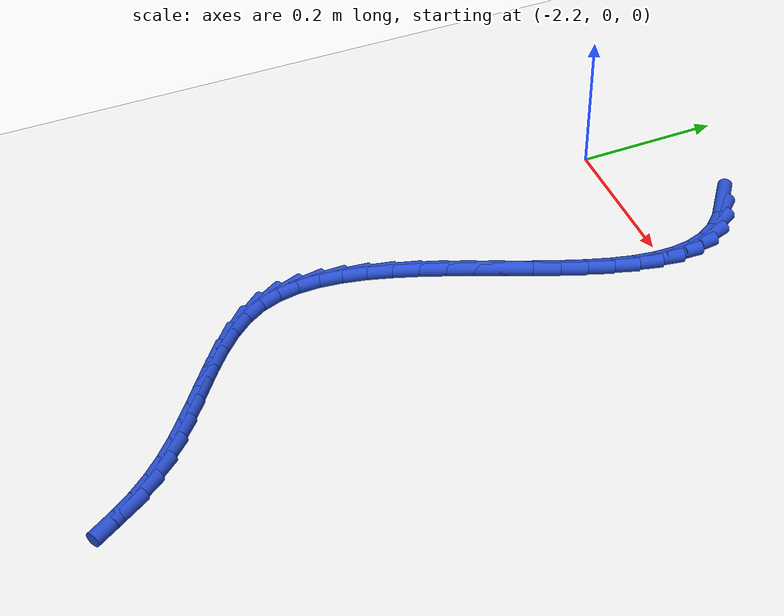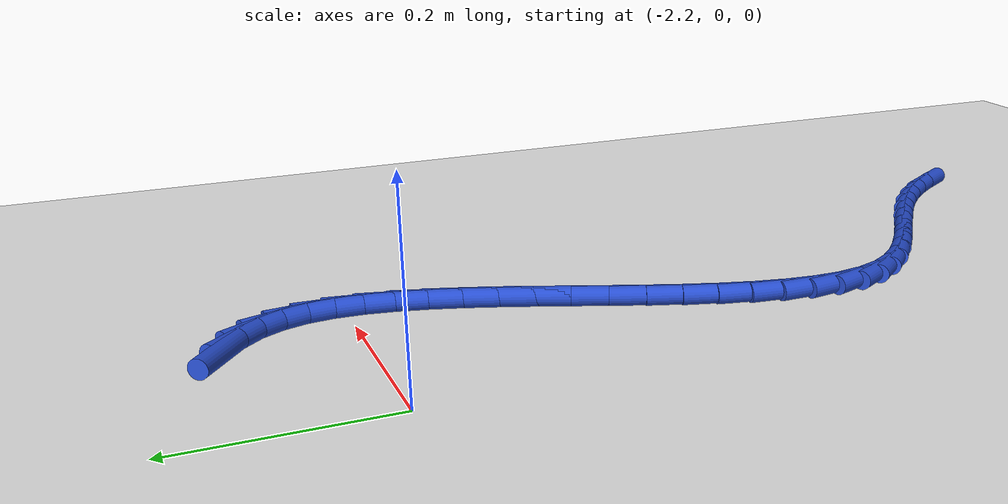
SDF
<sdf version="1.6">
 <world name="default">
  <model name="ground_plane">
   <static>1</static>
   <link name="link">
    <collision name="collision">
     <geometry><plane><normal>0 0 1</normal><size>100 100</size></plane></geometry>
     <surface><friction><ode><mu>100</mu><mu2>50</mu2></ode></friction></surface>
    </collision>
    <visual name="visual">
     <cast_shadows>0</cast_shadows>
     <geometry><plane><normal>0 0 1</normal><size>100 100</size></plane></geometry>
     <material>
      <script><uri>file://media/materials/scripts/gazebo.material</uri><name>Gazebo/WhiteGlow</name></script>
     </material>
    </visual>
   </link>
  </model>
  <model name="line">
   <link name="link_147">
    <pose>-2.033990776232663 0.12459184326906561 0.01 0 1.57 -0.6410639100689401</pose>
    <collision name="collision">
     <geometry><cylinder><radius>0.01</radius><length>0.08</length></cylinder></geometry>
    </collision>
    <visual name="visual">
     <material>
      <script><name>Gazebo/Blue</name><uri>file://media/materials/scripts/gazebo.material</uri></script>
     </material>
     <geometry><cylinder><radius>0.01</radius><length>0.08</length></cylinder></geometry>
    </visual>
   </link>
   <link name="link_148">
    <pose>-2.0100074000769603 0.10669547633855624 0.01 0 1.57 -0.8314911376877588</pose>
    <collision name="collision">
     <geometry><cylinder><radius>0.01</radius><length>0.08</length></cylinder></geometry>
    </collision>
    <visual name="visual">
     <material>
      <script><name>Gazebo/Blue</name><uri>file://media/materials/scripts/gazebo.material</uri></script>
     </material>
     <geometry><cylinder><radius>0.01</radius><length>0.08</length></cylinder></geometry>
    </visual>
   </link>
   <link name="link_149">
    <pose>-1.9916091952062818 0.08651794056798692 0.01 0 1.57 -1.0586668584838619</pose>
    <collision name="collision">
     <geometry><cylinder><radius>0.01</radius><length>0.08</length></cylinder></geometry>
    </collision>
    <visual name="visual">
     <material>
      <script><name>Gazebo/Blue</name><uri>file://media/materials/scripts/gazebo.material</uri></script>
     </material>
     <geometry><cylinder><radius>0.01</radius><length>0.08</length></cylinder></geometry>
    </visual>
   </link>
   <link name="link_150">
    <pose>-1.9789691260480256 0.06403302748500532 0.01 0 1.57 -1.2772578662597003</pose>
    <collision name="collision">
     <geometry><cylinder><radius>0.01</radius><length>0.08</length></cylinder></geometry>
    </collision>
    <visual name="visual">
     <material>
      <script><name>Gazebo/Blue</name><uri>file://media/materials/scripts/gazebo.material</uri></script>
     </material>
     <geometry><cylinder><radius>0.01</radius><length>0.08</length></cylinder></geometry>
    </visual>
   </link>
   <link name="link_151">
    <pose>-1.9715380231471555 0.03944874140511876 0.01 0 1.57 -1.466139635362103</pose>
    <collision name="collision">
     <geometry><cylinder><radius>0.01</radius><length>0.08</length></cylinder></geometry>
    </collision>
    <visual name="visual">
     <material>
      <script><name>Gazebo/Blue</name><uri>file://media/materials/scripts/gazebo.material</uri></script>
     </material>
     <geometry><cylinder><radius>0.01</radius><length>0.08</length></cylinder></geometry>
    </visual>
   </link>
   <link name="link_152">
    <pose>-1.9687573276656614 0.01297613194279617 0.01 0 1.57 1.524252397911639</pose>
    <collision name="collision">
     <geometry><cylinder><radius>0.01</radius><length>0.08</length></cylinder></geometry>
    </collision>
    <visual name="visual">
     <material>
      <script><name>Gazebo/Blue</name><uri>file://media/materials/scripts/gazebo.material</uri></script>
     </material>
     <geometry><cylinder><radius>0.01</radius><length>0.08</length></cylinder></geometry>
    </visual>
   </link>
   <link name="link_153">
    <pose>-1.9700684807655338 -0.015173751287493459 0.01 0 1.57 1.4086576493405094</pose>
    <collision name="collision">
     <geometry><cylinder><radius>0.01</radius><length>0.08</length></cylinder></geometry>
    </collision>
    <visual name="visual">
     <material>
      <script><name>Gazebo/Blue</name><uri>file://media/materials/scripts/gazebo.material</uri></script>
     </material>
     <geometry><cylinder><radius>0.01</radius><length>0.08</length></cylinder></geometry>
    </visual>
   </link>
   <link name="link_154">
    <pose>-1.9749129236087632 -0.044789858671281074 0.01 0 1.57 1.3227300893939</pose>
    <collision name="collision">
     <geometry><cylinder><radius>0.01</radius><length>0.08</length></cylinder></geometry>
    </collision>
    <visual name="visual">
     <material>
      <script><name>Gazebo/Blue</name><uri>file://media/materials/scripts/gazebo.material</uri></script>
     </material>
     <geometry><cylinder><radius>0.01</radius><length>0.08</length></cylinder></geometry>
    </visual>
   </link>
   <link name="link_155">
    <pose>-1.9827320973573408 -0.0756611405940987 0.01 0 1.57 1.2604564068421333</pose>
    <collision name="collision">
     <geometry><cylinder><radius>0.01</radius><length>0.08</length></cylinder></geometry>
    </collision>
    <visual name="visual">
     <material>
      <script><name>Gazebo/Blue</name><uri>file://media/materials/scripts/gazebo.material</uri></script>
     </material>
     <geometry><cylinder><radius>0.01</radius><length>0.08</length></cylinder></geometry>
    </visual>
   </link>
   <link name="link_156">
    <pose>-1.992967443173257 -0.10757654744147538 0.01 0 1.57 1.217060617674295</pose>
    <collision name="collision">
     <geometry><cylinder><radius>0.01</radius><length>0.08</length></cylinder></geometry>
    </collision>
    <visual name="visual">
     <material>
      <script><name>Gazebo/Blue</name><uri>file://media/materials/scripts/gazebo.material</uri></script>
     </material>
     <geometry><cylinder><radius>0.01</radius><length>0.08</length></cylinder></geometry>
    </visual>
   </link>
   <link name="link_157">
    <pose>-2.0050604022185023 -0.14032502959894316 0.01 0 1.57 1.1891586995908447</pose>
    <collision name="collision">
     <geometry><cylinder><radius>0.01</radius><length>0.08</length></cylinder></geometry>
    </collision>
    <visual name="visual">
     <material>
      <script><name>Gazebo/Blue</name><uri>file://media/materials/scripts/gazebo.material</uri></script>
     </material>
     <geometry><cylinder><radius>0.01</radius><length>0.08</length></cylinder></geometry>
    </visual>
   </link>
   <link name="link_158">
    <pose>-2.0184524156550663 -0.17369553745203287 0.01 0 1.57 1.1745711107287942</pose>
    <collision name="collision">
     <geometry><cylinder><radius>0.01</radius><length>0.08</length></cylinder></geometry>
    </collision>
    <visual name="visual">
     <material>
      <script><name>Gazebo/Blue</name><uri>file://media/materials/scripts/gazebo.material</uri></script>
     </material>
     <geometry><cylinder><radius>0.01</radius><length>0.08</length></cylinder></geometry>
    </visual>
   </link>
   <link name="link_159">
    <pose>-2.0325849246449406 -0.2074770213862756 0.01 0 1.57 1.1721118299722944</pose>
    <collision name="collision">
     <geometry><cylinder><radius>0.01</radius><length>0.08</length></cylinder></geometry>
    </collision>
    <visual name="visual">
     <material>
      <script><name>Gazebo/Blue</name><uri>file://media/materials/scripts/gazebo.material</uri></script>
     </material>
     <geometry><cylinder><radius>0.01</radius><length>0.08</length></cylinder></geometry>
    </visual>
   </link>
   <link name="link_160">
    <pose>-2.0468993703501166 -0.2414584317872024 0.01 0 1.57 1.1814469636954539</pose>
    <collision name="collision">
     <geometry><cylinder><radius>0.01</radius><length>0.08</length></cylinder></geometry>
    </collision>
    <visual name="visual">
     <material>
      <script><name>Gazebo/Blue</name><uri>file://media/materials/scripts/gazebo.material</uri></script>
     </material>
     <geometry><cylinder><radius>0.01</radius><length>0.08</length></cylinder></geometry>
    </visual>
   </link>
   <link name="link_161">
    <pose>-2.0608371939325827 -0.2754287190403442 0.01 0 1.57 1.2030392906257317</pose>
    <collision name="collision">
     <geometry><cylinder><radius>0.01</radius><length>0.08</length></cylinder></geometry>
    </collision>
    <visual name="visual">
     <material>
      <script><name>Gazebo/Blue</name><uri>file://media/materials/scripts/gazebo.material</uri></script>
     </material>
     <geometry><cylinder><radius>0.01</radius><length>0.08</length></cylinder></geometry>
    </visual>
   </link>
   <link name="link_162">
    <pose>-2.0738398365543302 -0.30917683353123204 0.01 0 1.57 1.2381733660178766</pose>
    <collision name="collision">
     <geometry><cylinder><radius>0.01</radius><length>0.08</length></cylinder></geometry>
    </collision>
    <visual name="visual">
     <material>
      <script><name>Gazebo/Blue</name><uri>file://media/materials/scripts/gazebo.material</uri></script>
     </material>
     <geometry><cylinder><radius>0.01</radius><length>0.08</length></cylinder></geometry>
    </visual>
   </link>
   <link name="link_163">
    <pose>-2.085348739377352 -0.342491725645397 0.01 0 1.57 1.289043680743816</pose>
    <collision name="collision">
     <geometry><cylinder><radius>0.01</radius><length>0.08</length></cylinder></geometry>
    </collision>
    <visual name="visual">
     <material>
      <script><name>Gazebo/Blue</name><uri>file://media/materials/scripts/gazebo.material</uri></script>
     </material>
     <geometry><cylinder><radius>0.01</radius><length>0.08</length></cylinder></geometry>
    </visual>
   </link>
   <link name="link_164">
    <pose>-2.0948053435636353 -0.37516234576837104 0.01 0 1.57 1.358856213631423</pose>
    <collision name="collision">
     <geometry><cylinder><radius>0.01</radius><length>0.08</length></cylinder></geometry>
    </collision>
    <visual name="visual">
     <material>
      <script><name>Gazebo/Blue</name><uri>file://media/materials/scripts/gazebo.material</uri></script>
     </material>
     <geometry><cylinder><radius>0.01</radius><length>0.08</length></cylinder></geometry>
    </visual>
   </link>
   <link name="link_165">
    <pose>-2.1016510902751726 -0.40697764428568295 0.01 0 1.57 1.4518015411511787</pose>
    <collision name="collision">
     <geometry><cylinder><radius>0.01</radius><length>0.08</length></cylinder></geometry>
    </collision>
    <visual name="visual">
     <material>
      <script><name>Gazebo/Blue</name><uri>file://media/materials/scripts/gazebo.material</uri></script>
     </material>
     <geometry><cylinder><radius>0.01</radius><length>0.08</length></cylinder></geometry>
    </visual>
   </link>
   <link name="link_166">
    <pose>-2.105327420673953 -0.4377265715828649 0.01 0 1.57 -1.5690439664536842</pose>
    <collision name="collision">
     <geometry><cylinder><radius>0.01</radius><length>0.08</length></cylinder></geometry>
    </collision>
    <visual name="visual">
     <material>
      <script><name>Gazebo/Blue</name><uri>file://media/materials/scripts/gazebo.material</uri></script>
     </material>
     <geometry><cylinder><radius>0.01</radius><length>0.08</length></cylinder></geometry>
    </visual>
   </link>
   <link name="link_167">
    <pose>-2.105275775921969 -0.46719807804544805 0.01 0 1.57 -1.4169918240626291</pose>
    <collision name="collision">
     <geometry><cylinder><radius>0.01</radius><length>0.08</length></cylinder></geometry>
    </collision>
    <visual name="visual">
     <material>
      <script><name>Gazebo/Blue</name><uri>file://media/materials/scripts/gazebo.material</uri></script>
     </material>
     <geometry><cylinder><radius>0.01</radius><length>0.08</length></cylinder></geometry>
    </visual>
   </link>
   <link name="link_168">
    <pose>-2.1009375971812094 -0.49518111405896303 0.01 0 1.57 -1.234662533809981</pose>
    <collision name="collision">
     <geometry><cylinder><radius>0.01</radius><length>0.08</length></cylinder></geometry>
    </collision>
    <visual name="visual">
     <material>
      <script><name>Gazebo/Blue</name><uri>file://media/materials/scripts/gazebo.material</uri></script>
     </material>
     <geometry><cylinder><radius>0.01</radius><length>0.08</length></cylinder></geometry>
    </visual>
   </link>
   <link name="link_169">
    <pose>-2.091754325613666 -0.5214646300089412 0.01 0 1.57 -1.035009906181265</pose>
    <collision name="collision">
     <geometry><cylinder><radius>0.01</radius><length>0.08</length></cylinder></geometry>
    </collision>
    <visual name="visual">
     <material>
      <script><name>Gazebo/Blue</name><uri>file://media/materials/scripts/gazebo.material</uri></script>
     </material>
     <geometry><cylinder><radius>0.01</radius><length>0.08</length></cylinder></geometry>
    </visual>
   </link>
   <link name="link_170">
    <pose>-2.077268222412108 -0.5458636568346108 0.01 0 1.57 -0.8680925553389992</pose>
    <collision name="collision">
     <geometry><cylinder><radius>0.01</radius><length>0.08</length></cylinder></geometry>
    </collision>
    <visual name="visual">
     <material>
      <script><name>Gazebo/Blue</name><uri>file://media/materials/scripts/gazebo.material</uri></script>
     </material>
     <geometry><cylinder><radius>0.01</radius><length>0.08</length></cylinder></geometry>
    </visual>
   </link>
   <link name="link_171">
    <pose>-2.058116874445013 -0.5684765689723265 0.01 0 1.57 -0.7531164788720646</pose>
    <collision name="collision">
     <geometry><cylinder><radius>0.01</radius><length>0.08</length></cylinder></geometry>
    </collision>
    <visual name="visual">
     <material>
      <script><name>Gazebo/Blue</name><uri>file://media/materials/scripts/gazebo.material</uri></script>
     </material>
     <geometry><cylinder><radius>0.01</radius><length>0.08</length></cylinder></geometry>
    </visual>
   </link>
   <link name="link_172">
    <pose>-2.0356097336576515 -0.589575541769604 0.01 0 1.57 -0.6802991213408406</pose>
    <collision name="collision">
     <geometry><cylinder><radius>0.01</radius><length>0.08</length></cylinder></geometry>
    </collision>
    <visual name="visual">
     <material>
      <script><name>Gazebo/Blue</name><uri>file://media/materials/scripts/gazebo.material</uri></script>
     </material>
     <geometry><cylinder><radius>0.01</radius><length>0.08</length></cylinder></geometry>
    </visual>
   </link>
   <link name="link_173">
    <pose>-2.0110659853257196 -0.6094352684332068 0.01 0 1.57 -0.6420659647392101</pose>
    <collision name="collision">
     <geometry><cylinder><radius>0.01</radius><length>0.08</length></cylinder></geometry>
    </collision>
    <visual name="visual">
     <material>
      <script><name>Gazebo/Blue</name><uri>file://media/materials/scripts/gazebo.material</uri></script>
     </material>
     <geometry><cylinder><radius>0.01</radius><length>0.08</length></cylinder></geometry>
    </visual>
   </link>
   <link name="link_174">
    <pose>-1.9857933262412142 -0.6283331519124717 0.01 0 1.57 -0.630172774256955</pose>
    <collision name="collision">
     <geometry><cylinder><radius>0.01</radius><length>0.08</length></cylinder></geometry>
    </collision>
    <visual name="visual">
     <material>
      <script><name>Gazebo/Blue</name><uri>file://media/materials/scripts/gazebo.material</uri></script>
     </material>
     <geometry><cylinder><radius>0.01</radius><length>0.08</length></cylinder></geometry>
    </visual>
   </link>
   <link name="link_175">
    <pose>-1.9606896541723149 -0.6466432528090058 0.01 0 1.57 -0.6384127927438503</pose>
    <collision name="collision">
     <geometry><cylinder><radius>0.01</radius><length>0.08</length></cylinder></geometry>
    </collision>
    <visual name="visual">
     <material>
      <script><name>Gazebo/Blue</name><uri>file://media/materials/scripts/gazebo.material</uri></script>
     </material>
     <geometry><cylinder><radius>0.01</radius><length>0.08</length></cylinder></geometry>
    </visual>
   </link>
   <link name="link_176">
    <pose>-1.9361408935768791 -0.664860388815878 0.01 0 1.57 -0.667332446227883</pose>
    <collision name="collision">
     <geometry><cylinder><radius>0.01</radius><length>0.08</length></cylinder></geometry>
    </collision>
    <visual name="visual">
     <material>
      <script><name>Gazebo/Blue</name><uri>file://media/materials/scripts/gazebo.material</uri></script>
     </material>
     <geometry><cylinder><radius>0.01</radius><length>0.08</length></cylinder></geometry>
    </visual>
   </link>
   <link name="link_177">
    <pose>-1.9125007276157429 -0.6834869822515832 0.01 0 1.57 -0.7177614762799935</pose>
    <collision name="collision">
     <geometry><cylinder><radius>0.01</radius><length>0.08</length></cylinder></geometry>
    </collision>
    <visual name="visual">
     <material>
      <script><name>Gazebo/Blue</name><uri>file://media/materials/scripts/gazebo.material</uri></script>
     </material>
     <geometry><cylinder><radius>0.01</radius><length>0.08</length></cylinder></geometry>
    </visual>
   </link>
   <link name="link_178">
    <pose>-1.8901228394497407 -0.7030254554346169 0.01 0 1.57 -0.7899644542781907</pose>
    <collision name="collision">
     <geometry><cylinder><radius>0.01</radius><length>0.08</length></cylinder></geometry>
    </collision>
    <visual name="visual">
     <material>
      <script><name>Gazebo/Blue</name><uri>file://media/materials/scripts/gazebo.material</uri></script>
     </material>
     <geometry><cylinder><radius>0.01</radius><length>0.08</length></cylinder></geometry>
    </visual>
   </link>
   <link name="link_179">
    <pose>-1.8693607521989632 -0.7239780252675491 0.01 0 1.57 -0.8756315712051331</pose>
    <collision name="collision">
     <geometry><cylinder><radius>0.01</radius><length>0.08</length></cylinder></geometry>
    </collision>
    <visual name="visual">
     <material>
      <script><name>Gazebo/Blue</name><uri>file://media/materials/scripts/gazebo.material</uri></script>
     </material>
     <geometry><cylinder><radius>0.01</radius><length>0.08</length></cylinder></geometry>
    </visual>
   </link>
   <link name="link_180">
    <pose>-1.8504321920771305 -0.7466726102443305 0.01 0 1.57 -0.9526650046452926</pose>
    <collision name="collision">
     <geometry><cylinder><radius>0.01</radius><length>0.08</length></cylinder></geometry>
    </collision>
    <visual name="visual">
     <material>
      <script><name>Gazebo/Blue</name><uri>file://media/materials/scripts/gazebo.material</uri></script>
     </material>
     <geometry><cylinder><radius>0.01</radius><length>0.08</length></cylinder></geometry>
    </visual>
   </link>
   <link name="link_181">
    <pose>-1.8331719002275526 -0.7709455588365791 0.01 0 1.57 -1.0171755597489904</pose>
    <collision name="collision">
     <geometry><cylinder><radius>0.01</radius><length>0.08</length></cylinder></geometry>
    </collision>
    <visual name="visual">
     <material>
      <script><name>Gazebo/Blue</name><uri>file://media/materials/scripts/gazebo.material</uri></script>
     </material>
     <geometry><cylinder><radius>0.01</radius><length>0.08</length></cylinder></geometry>
    </visual>
   </link>
  </model>
 </world>
</sdf>
